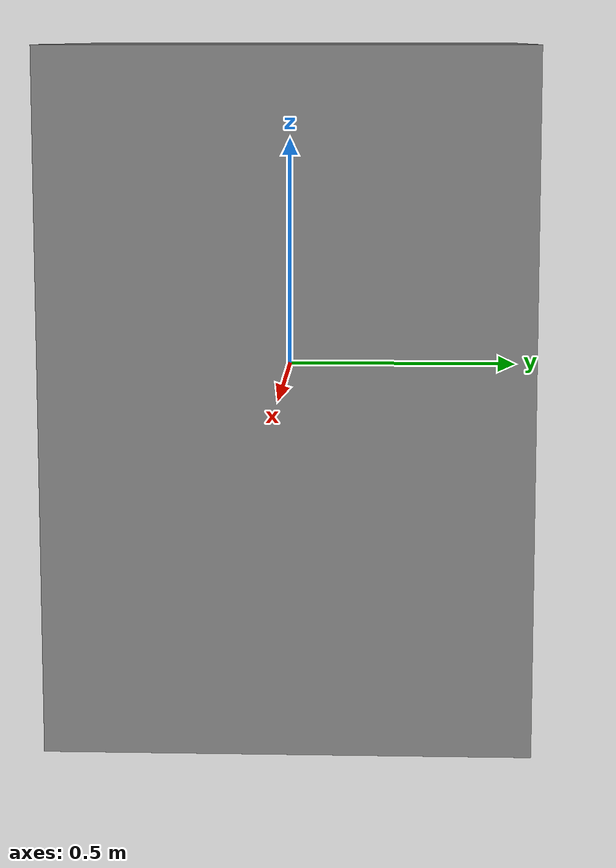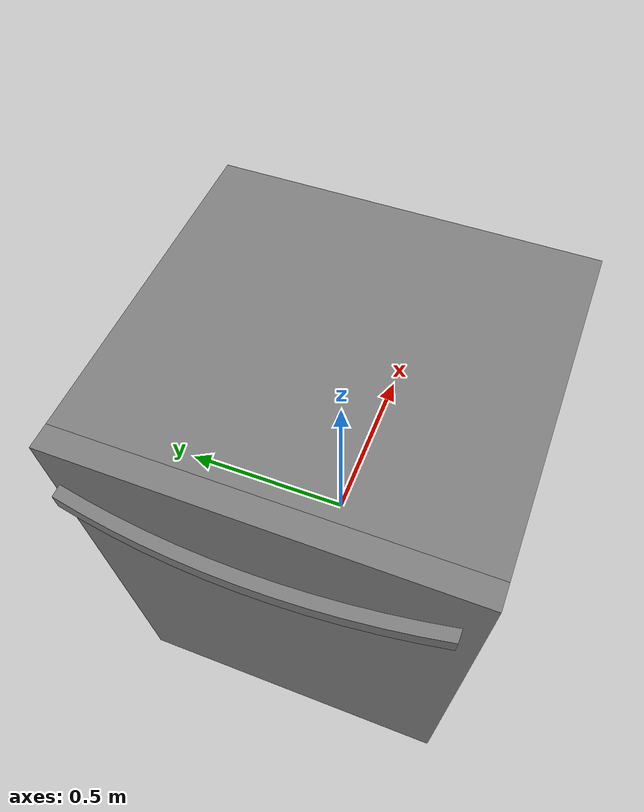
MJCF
<mujoco model="partnet_c6090fb2806b2abfa5f4a1f264741b67">
    <compiler angle="radian" />
    <size njmax="500" nconmax="100" />
    <asset>
        <mesh name="new-2" file="new-2.stl" />
        <mesh name="new-0" file="new-0.stl" />
        <mesh name="new-1" file="new-1.stl" />
        <mesh name="original-2" file="original-2.stl" />
    </asset>
    <worldbody>
    <body>
        <body name="object" >
        <geom quat="0.5 0.5 -0.5 -0.5" type="mesh" group="0" mesh="new-2" contype="0" conaffinity="0"/>
        <geom quat="0.5 0.5 -0.5 -0.5" type="mesh" group="0" mesh="new-0" contype="0" conaffinity="0"/>
        <body name="link_0" pos="-0.387863 -0.484492 -0.565497" quat="0.5 0.5 -0.5 -0.5" gravcomp="1">
            <inertial pos="-0.500179 0.648008 0.0386602" quat="0.497788 0.502202 -0.502202 0.497788" mass="83.3471" diaginertia="18.4419 11.572 6.96006" />
            <joint name="joint_0" pos="0 0 0" axis="1 0 0" limited="true" range="0 1.5708" />
            <geom pos="-0.484492 0.565497 -0.387863" type="mesh" group="0" mesh="new-1" />
            <geom pos="-0.484492 0.565497 -0.387863" type="mesh" group="0" mesh="original-2" />
        </body>
     </body>
        <site name="bottom_site" pos="0 0 -0.3" rgba="0 0 0 0" size="0.005"/>
        <site name="top_site" pos="0 0 0.3" rgba="0 0 0 0" size="0.005"/>
        <site name="horizontal_radius_site" pos="0.3 0 0" rgba="0 0 0 0" size="0.1"/>
    </body>
    </worldbody>
</mujoco>
